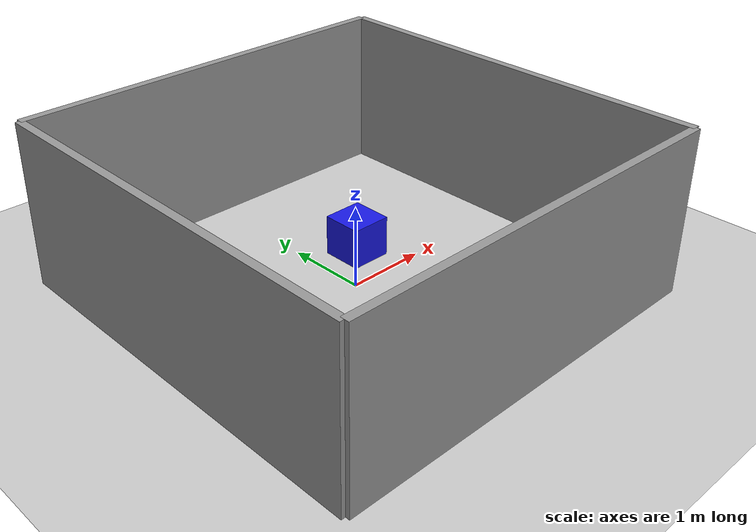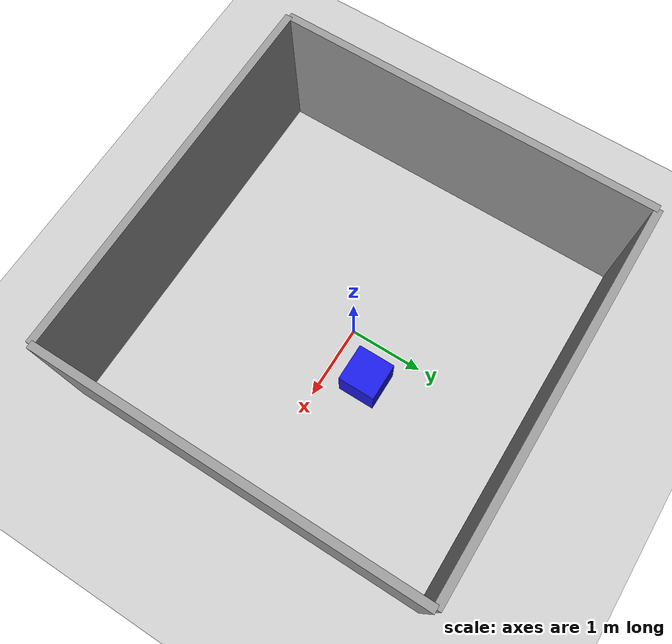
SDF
<?xml version="1.0" ?>
<sdf version="1.5">
  <world name="small_room">
    <include>
      <uri>model://sun</uri>
    </include>

    <!-- Ground Plane -->
    <model name="ground_plane">
      <static>true</static>
      <link name="link">
        <collision name="collision">
          <geometry>
            <plane>
              <normal>0 0 1</normal>
              <size>10 10</size>
            </plane>
          </geometry>
          <surface>
            <friction>
              <ode>
                <mu>1.0</mu>
                <mu2>1.0</mu2>
              </ode>
            </friction>
          </surface>
        </collision>
        <visual name="visual">
          <geometry>
            <plane>
              <normal>0 0 1</normal>
              <size>10 10</size>
            </plane>
          </geometry>
          <material>
            <ambient>0.8 0.8 0.8 1</ambient>
            <diffuse>0.8 0.8 0.8 1</diffuse>
            <specular>0.8 0.8 0.8 1</specular>
          </material>
        </visual>
      </link>
    </model>

    <!-- Walls of the room -->
    <model name="wall_north">
      <static>true</static>
      <link name="link">
        <collision name="collision">
          <geometry><box> <size>5 0.1 2</size> </box></geometry>
        </collision>
        <visual name="visual">
          <geometry><box> <size>5 0.1 2</size> </box></geometry>
          <material><ambient>0.6 0.6 0.6 1</ambient><diffuse>0.6 0.6 0.6 1</diffuse></material>
        </visual>
      </link>
      <pose>0 2.5 1 0 0 0</pose>
    </model>

    <model name="wall_south">
      <static>true</static>
      <link name="link">
        <collision name="collision">
          <geometry><box> <size>5 0.1 2</size> </box></geometry>
        </collision>
        <visual name="visual">
          <geometry><box> <size>5 0.1 2</size> </box></geometry>
          <material><ambient>0.6 0.6 0.6 1</ambient><diffuse>0.6 0.6 0.6 1</diffuse></material>
        </visual>
      </link>
      <pose>0 -2.5 1 0 0 0</pose>
    </model>

    <model name="wall_east">
      <static>true</static>
      <link name="link">
        <collision name="collision">
          <geometry><box> <size>0.1 5 2</size> </box></geometry>
        </collision>
        <visual name="visual">
          <geometry><box> <size>0.1 5 2</size> </box></geometry>
          <material><ambient>0.6 0.6 0.6 1</ambient><diffuse>0.6 0.6 0.6 1</diffuse></material>
        </visual>
      </link>
      <pose>2.5 0 1 0 0 0</pose>
    </model>

    <model name="wall_west">
      <static>true</static>
      <link name="link">
        <collision name="collision">
          <geometry><box> <size>0.1 5 2</size> </box></geometry>
        </collision>
        <visual name="visual">
          <geometry><box> <size>0.1 5 2</size> </box></geometry>
          <material><ambient>0.6 0.6 0.6 1</ambient><diffuse>0.6 0.6 0.6 1</diffuse></material>
        </visual>
      </link>
      <pose>-2.5 0 1 0 0 0</pose>
    </model>

    <!-- Simple Box Obstacle -->
    <model name="simple_box">
      <pose>0.5 0.5 0.25 0 0 0</pose>
      <link name="link">
        <collision name="collision">
          <geometry>
            <box><size>0.5 0.5 0.5</size></box>
          </geometry>
        </collision>
        <visual name="visual">
          <geometry>
            <box><size>0.5 0.5 0.5</size></box>
          </geometry>
          <material>
            <ambient>0.1 0.1 0.9 1</ambient>
            <diffuse>0.1 0.1 0.9 1</diffuse>
          </material>
        </visual>
      </link>
    </model>

  </world>
</sdf>
